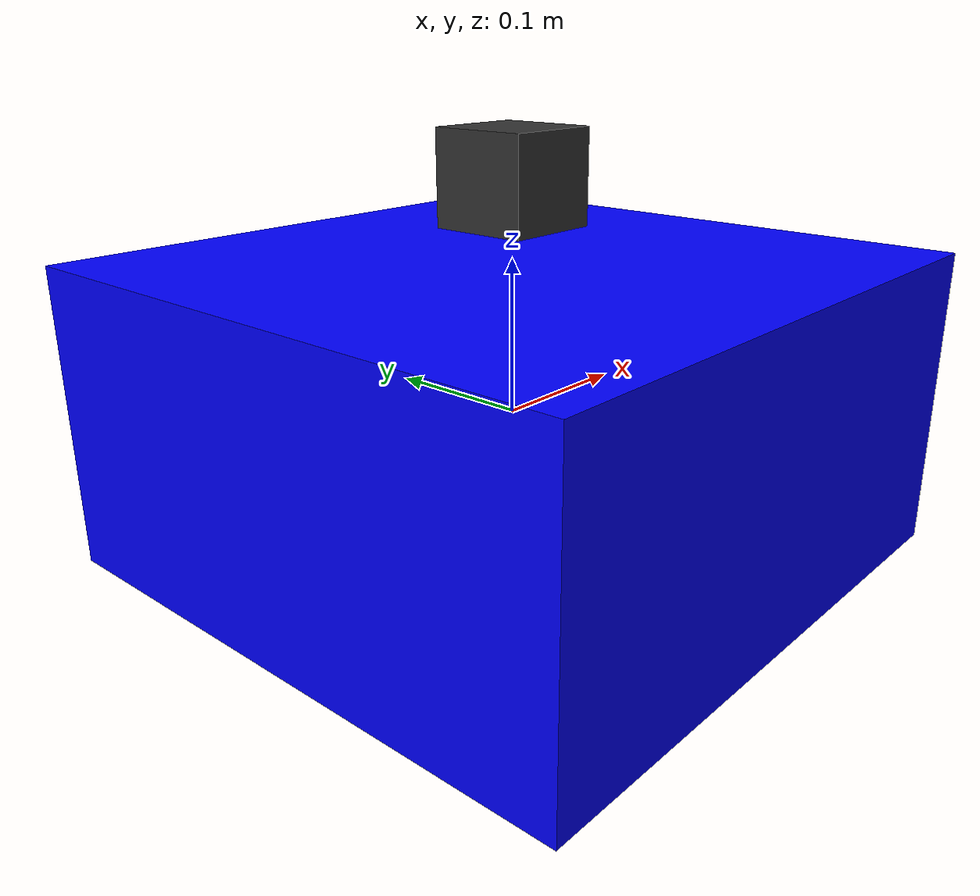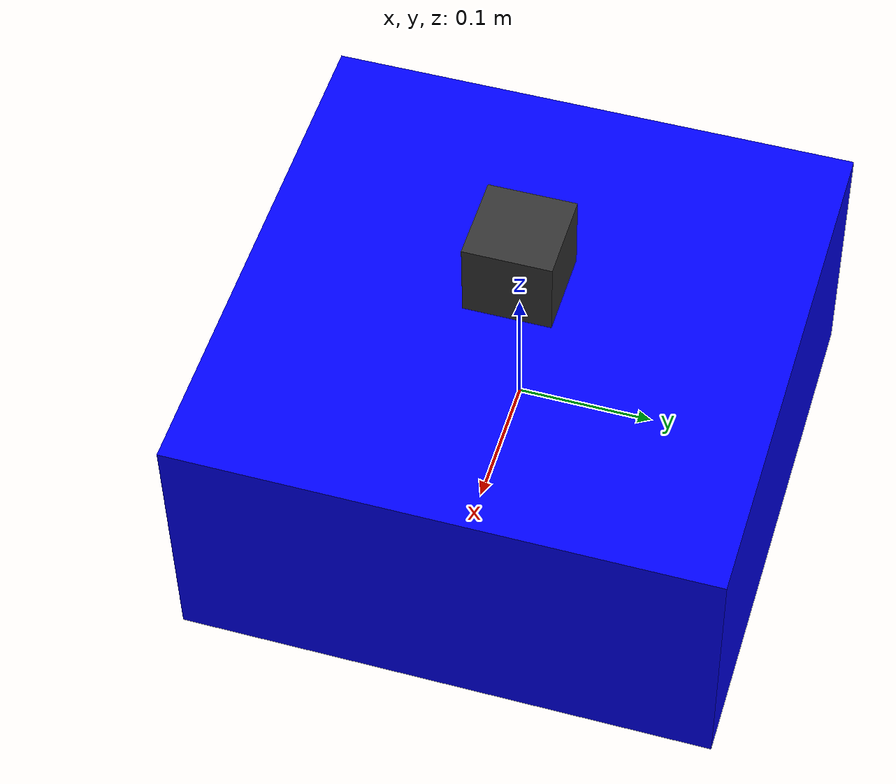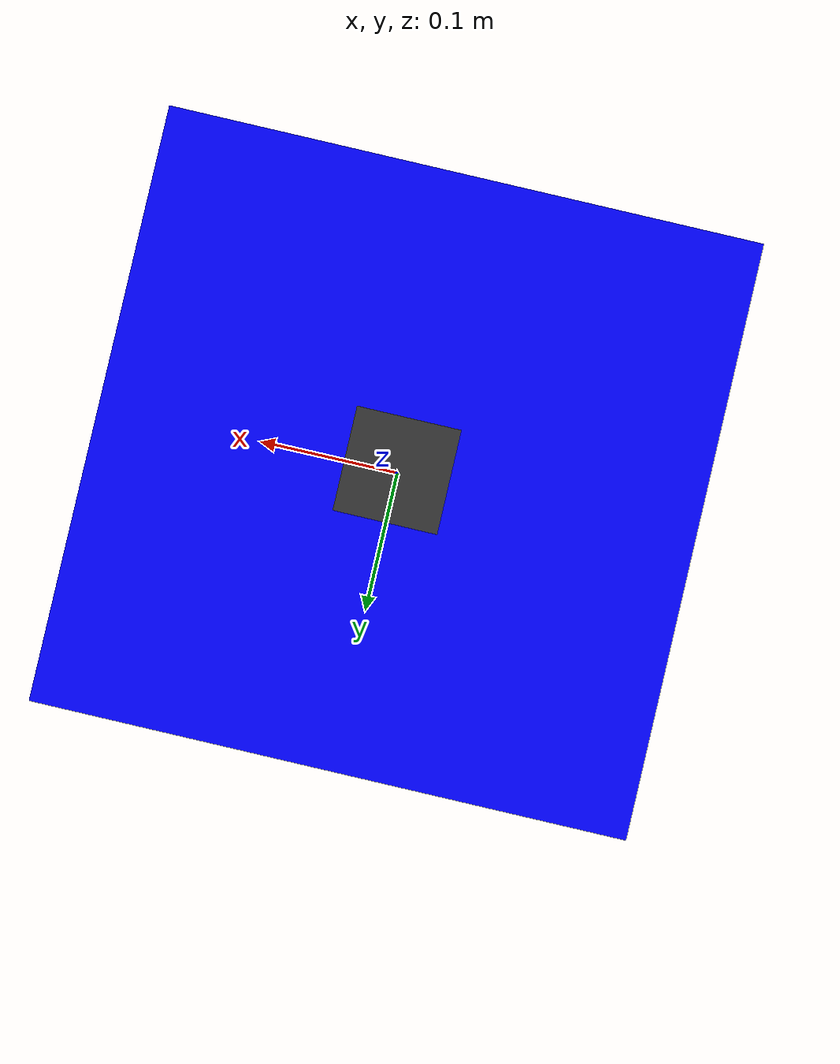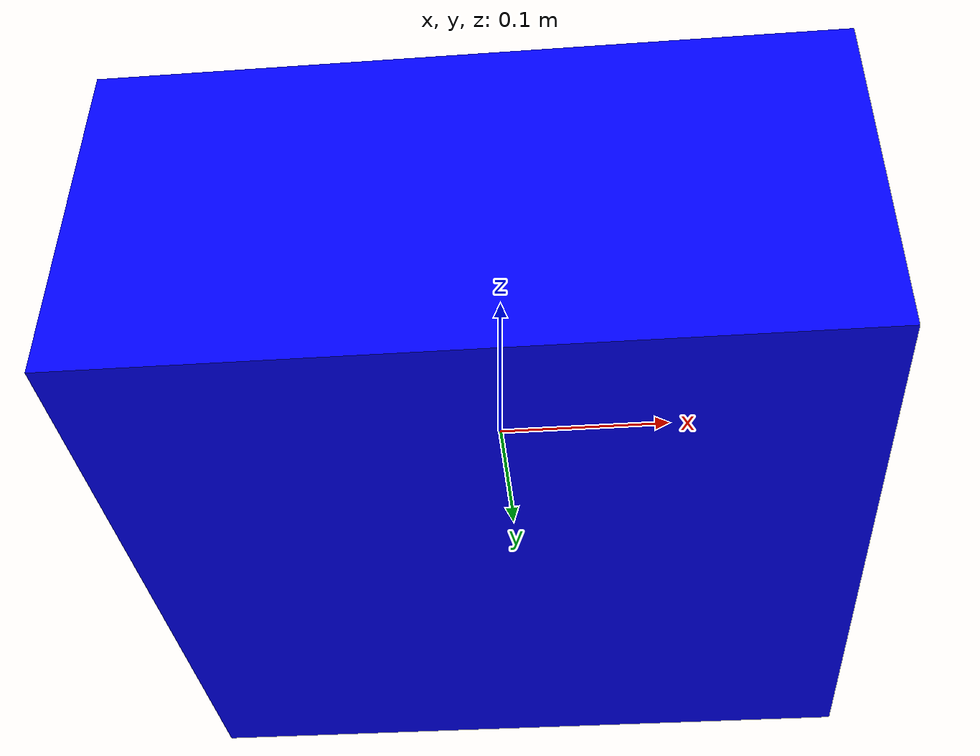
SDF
<?xml version="1.0"?>
<sdf version="1.9">
  <model name="lidar_bot">
    <pose>0 0 0 0 0 0</pose>

    <!-- Simple base link -->
    <link name="base_link">
      <inertial>
        <mass>1.0</mass>
        <inertia>
          <ixx>0.1</ixx>
          <iyy>0.1</iyy>
          <izz>0.1</izz>
        </inertia>
      </inertial>

      <!-- Robot base visual -->
      <visual name="base_visual">
        <geometry>
          <box>
            <size>0.4 0.4 0.2</size>
          </box>
        </geometry>
        <material>
          <diffuse>0 0 1 1</diffuse>
        </material>
      </visual>

      <collision name="base_collision">
        <geometry>
          <box>
            <size>0.4 0.4 0.2</size>
          </box>
        </geometry>
      </collision>
    </link>

    <!-- Lidar link (Livox Mid360) -->
    <link name="lidar_link">
      <pose>0 0 0.15 0 0 0</pose>

      <!-- Livox Mid360 visual (compact cube shape 65x65x60mm) -->
      <visual name="lidar_visual">
        <geometry>
          <box>
            <size>0.065 0.065 0.060</size>
          </box>
        </geometry>
        <material>
          <diffuse>0.2 0.2 0.2 1</diffuse>
        </material>
      </visual>

      <!-- Livox Mid360 3D LiDAR sensor -->
      <sensor name="livox_mid360" type="gpu_lidar">
        <pose>0 0 0.03 0 0 0</pose>
        <update_rate>10</update_rate>
        <always_on>1</always_on>
        <visualize>true</visualize>

        <lidar>
          <scan>
            <!-- 360° horizontal coverage -->
            <horizontal>
              <samples>180</samples>  <!-- 2° resolution -->
              <resolution>1</resolution>
              <min_angle>-3.14159</min_angle>
              <max_angle>3.14159</max_angle>
            </horizontal>

            <!-- 59° vertical FOV (-7° to +52°) -->
            <vertical>
              <samples>16</samples>  <!-- 1° vertical resolution -->
              <resolution>1</resolution>
              <min_angle>-0.2</min_angle>
              <max_angle>0.2</max_angle>
            </vertical>
          </scan>

          <range>
            <min>0.1</min>  <!-- 10cm min range -->
            <max>10.0</max>  <!-- 40m max range -->
            <resolution>0.05</resolution>  <!-- 5cm precision -->
          </range>

          <!-- Livox Mid360 noise characteristics -->
          <noise>
            <type>gaussian</type>
            <mean>0.0</mean>
            <stddev>0.02</stddev>  <!-- 2cm standard deviation -->
          </noise>
        </lidar>
      </sensor>
    </link>

    <!-- Fix lidar to base -->
    <joint name="lidar_joint" type="fixed">
      <parent>base_link</parent>
      <child>lidar_link</child>
    </joint>
  </model>
</sdf>
